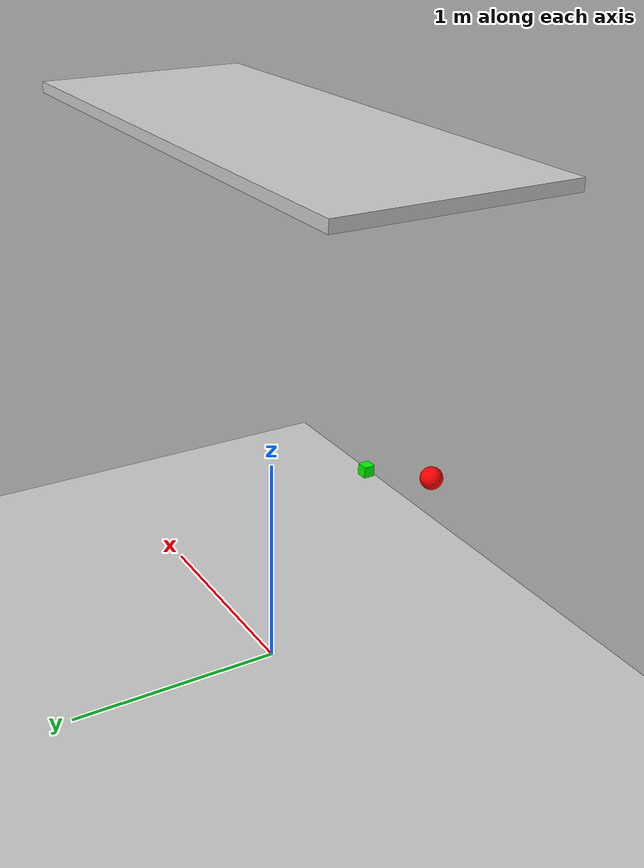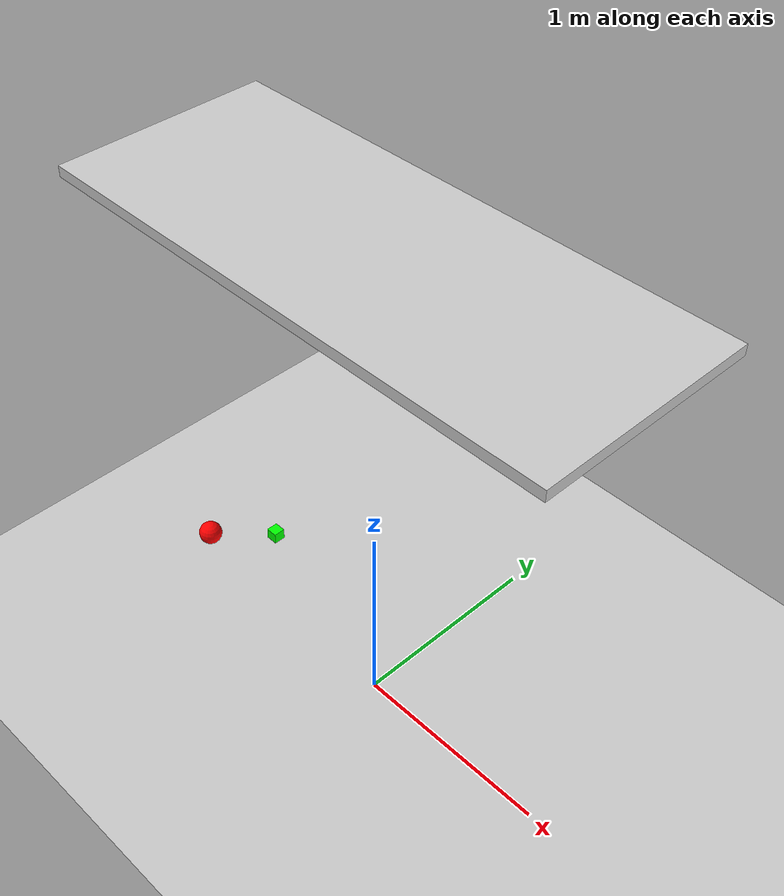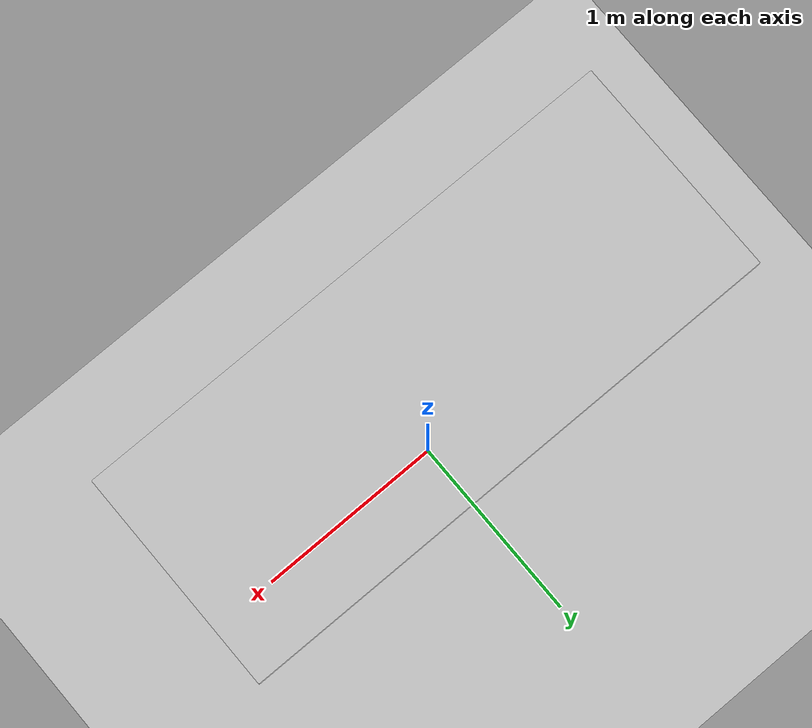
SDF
<sdf version="1.4">
 <world name="default">
  <include><uri>model://ground_plane</uri></include>
  <include><uri>model://sun</uri></include>
  <model name="cube">
   <pose>-0.3 -0.3 1.045 0 0 0</pose>
   <link name="link">
    <inertial><mass>0.2</mass></inertial>
    <collision name="collision">
     <geometry><box><size>0.05 0.05 0.05</size></box></geometry>
     <surface>
      <contact>
       <ode>
        <soft_cfm>0.001</soft_cfm>
        <soft_erp>0.8</soft_erp>
        <kp>1000</kp>
        <kd>100</kd>
        <max_vel>0.05</max_vel>
        <min_depth>0.001</min_depth>
       </ode>
      </contact>
      <friction><ode><mu>50.0</mu><mu2>50.0</mu2></ode></friction>
      <bounce><restitution_coefficient>0.0</restitution_coefficient><threshold>0.0</threshold></bounce>
     </surface>
    </collision>
    <visual name="visual">
     <geometry><box><size>0.05 0.05 0.05</size></box></geometry>
     <material><ambient>0 1 0 1</ambient><diffuse>0 1 0 1</diffuse></material>
    </visual>
   </link>
  </model>
  <model name="sphere">
   <pose>-0.5 -0.5 1.045 0 0 0</pose>
   <link name="link">
    <inertial><mass>0.2</mass></inertial>
    <collision name="collision"><geometry><sphere><radius>0.05</radius></sphere></geometry></collision>
    <visual name="visual">
     <geometry><sphere><radius>0.05</radius></sphere></geometry>
     <material><ambient>1 0 0 1</ambient><diffuse>1 0 0 1</diffuse></material>
    </visual>
   </link>
  </model>
  <model name="aircraft_wing_sheet">
   <pose>0 0 2.5 0 0 0</pose>
   <static>true</static>
   <link name="wing_link">
    <collision name="wing_collision"><geometry><box><size>2.5 1.0 0.05</size></box></geometry></collision>
    <visual name="wing_visual">
     <geometry><box><size>2.5 1.0 0.05</size></box></geometry>
     <material><ambient>0.7 0.7 0.7 1</ambient><diffuse>0.8 0.8 0.8 1</diffuse></material>
    </visual>
    <visual name="blue_square_left">
     <pose>-0.5 0 -0.025 0 0 0</pose>
     <geometry><box><size>0.05 0.05 0.001</size></box></geometry>
     <material><ambient>0 0 1 1</ambient><diffuse>0 0 1 1</diffuse></material>
    </visual>
    <visual name="blue_square_right">
     <pose>0.3 0 -0.03 0 0 0</pose>
     <geometry><box><size>0.05 0.05 0.001</size></box></geometry>
     <material><ambient>0 0 1 1</ambient><diffuse>0 0 1 1</diffuse></material>
    </visual>
   </link>
  </model>
  <physics type="ode">
   <max_step_size>0.001</max_step_size>
   <real_time_factor>1</real_time_factor>
   <real_time_update_rate>1000</real_time_update_rate>
   <gravity>0 0 -9.81</gravity>
  </physics>
 </world>
</sdf>
